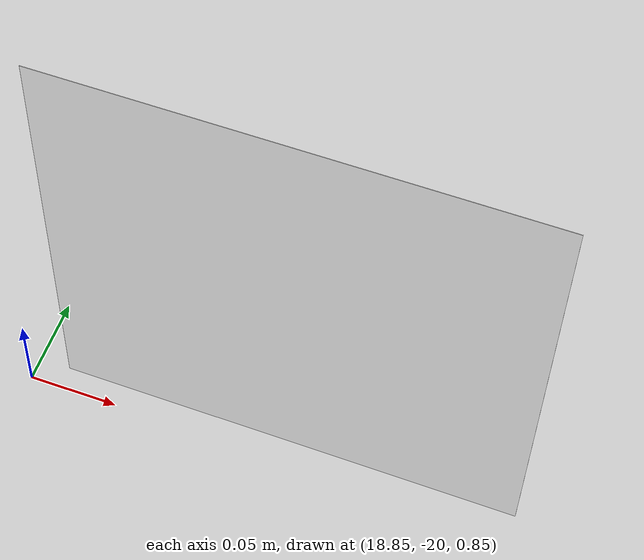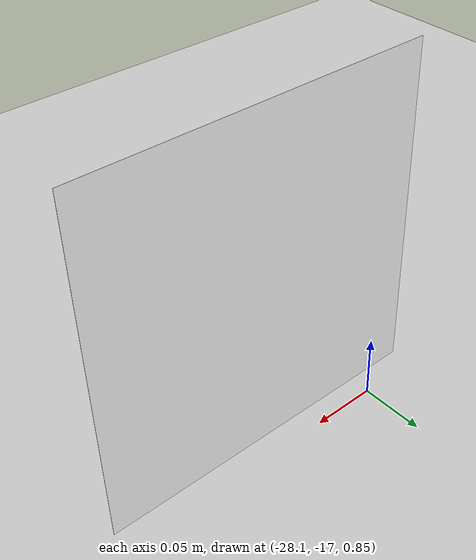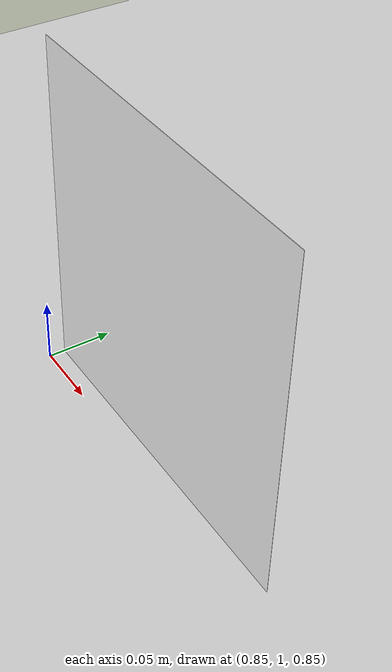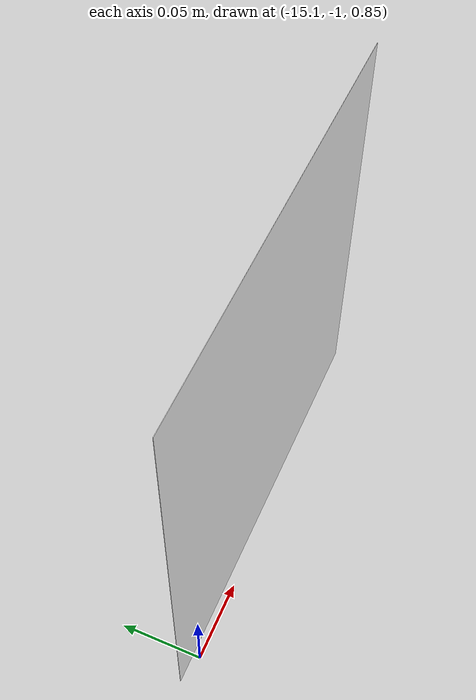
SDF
<?xml version="1.0" ?>
<sdf version="1.9">
  <world name="empty">
    <physics type="ode">
      <max_step_size>0.001</max_step_size>
      <real_time_factor>1.0</real_time_factor>
      <real_time_update_rate>1000</real_time_update_rate>
    </physics>
    <plugin name='gz::sim::systems::Physics' filename='libgz-sim-physics-system.so'/>
    <plugin name='gz::sim::systems::UserCommands' filename='libgz-sim-user-commands-system.so'/>
    <plugin name='gz::sim::systems::SceneBroadcaster' filename='libgz-sim-scene-broadcaster-system.so'/>
    <plugin name='gz::sim::systems::Contact' filename='libgz-sim-contact-system.so'/>
    <plugin name='gz::sim::systems::Imu' filename='libgz-sim-imu-system.so'/>
    <plugin name='gz::sim::systems::AirPressure' filename='libgz-sim-air-pressure-system.so'/>
    <plugin name='gz::sim::systems::Sensors' filename='libgz-sim-sensors-system.so'>
      <render_engine>ogre2</render_engine>
    </plugin>
    <gravity>0 0 -9.80665</gravity>
    <magnetic_field>6e-06 2.3e-05 -4.2e-05</magnetic_field>
    <atmosphere type='adiabatic'/>
    <scene>
      <grid>false</grid>
      <ambient>0.4 0.4 0.4 1</ambient>
      <background>0.7 0.7 0.7 1</background>
      <shadows>true</shadows>
    </scene>
    <model name="ground_plane">
      <static>true</static>
      <link name="link">
        <collision name="collision">
          <geometry>
            <plane>
              <normal>0 0 1</normal>
              <size>100 100</size>
            </plane>
          </geometry>
        </collision>
        <visual name="visual">
          <geometry>
            <plane>
              <normal>0 0 1</normal>
              <size>100 100</size>
            </plane>
          </geometry>
          <material>
            <ambient>0.8 0.8 0.8 1</ambient>
            <diffuse>0.8 0.8 0.8 1</diffuse>
            <specular>0.8 0.8 0.8 1</specular>
          </material>
        </visual>
      </link>
    </model>
    <include>
      <pose>1 1 1 1.57 1.57 0</pose>
      <uri>model://aruco_markers/aruco_marker_1</uri>
    </include>
    <include>
      <pose>-15 -1 1 1.57 0 0</pose>
      <uri>model://aruco_markers/aruco_marker_2</uri>
    </include>
    <include>
      <pose>19 -20 1 1.57 1.57 0</pose>
      <uri>model://aruco_markers/aruco_marker_3</uri>
    </include>
    <include>
      <pose>-28 -17 1 1.57 0 3.14</pose>
      <uri>model://aruco_markers/aruco_marker_4</uri>
    </include>
    <include>
      <pose>-10 16 1.5 1.57 0 1.57</pose>
      <uri>model://aruco_markers/aruco_marker_5</uri>
    </include>
    <light type="directional" name="sun">
      <cast_shadows>true</cast_shadows>
      <pose>0 0 10 0 0 0</pose>
      <diffuse>0.8 0.8 0.8 1</diffuse>
      <specular>0.2 0.2 0.2 1</specular>
      <attenuation>
        <range>1000</range>
        <constant>0.9</constant>
        <linear>0.01</linear>
        <quadratic>0.001</quadratic>
      </attenuation>
      <direction>-0.5 0.1 -0.9</direction>
    </light>
  </world>
</sdf>

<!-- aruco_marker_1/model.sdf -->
<sdf version="1.9">
  <model name="aruco_marker_1">
    <static>true</static>
    <link name="link">
      <!-- ArUco Marker 0 -->
      <visual name="aruco_marker_1_vis">
        <pose>0 0 0 0 0 0</pose> <!-- Position: x, y, z; Rotation: roll, pitch, yaw -->
        <geometry>
          <plane>
            <normal>0 0 1</normal> <!-- Normal vector for the plane -->
            <size>0.25 0.25</size>   <!-- Size of the marker (e.g., 10cm x 10cm) -->
          </plane>
        </geometry>
        <material>
          <pbr>
            <metal>
              <albedo_map>marker_0001.png</albedo_map>
              <metalness>0.0</metalness>
            </metal>
          </pbr>
          <ambient>1 1 1 1</ambient>
          <diffuse>1 1 1 1</diffuse>
          <specular>0 0 0 1</specular>
        </material>
      </visual>
    </link>
  </model>
</sdf>

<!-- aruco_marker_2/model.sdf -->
<sdf version="1.9">
  <model name="aruco_marker_2">
    <static>true</static>
    <link name="link">
      <!-- ArUco Marker 0 -->
      <visual name="aruco_marker_2_vis">
        <pose>0 0 0 0 0 0</pose> <!-- Position: x, y, z; Rotation: roll, pitch, yaw -->
        <geometry>
          <plane>
            <normal>0 0 1</normal> <!-- Normal vector for the plane -->
            <size>0.25 0.25</size>   <!-- Size of the marker (e.g., 10cm x 10cm) -->
          </plane>
        </geometry>
        <material>
          <pbr>
            <metal>
              <albedo_map>marker_0002.png</albedo_map>
              <metalness>0.0</metalness>
            </metal>
          </pbr>
          <ambient>1 1 1 1</ambient>
          <diffuse>1 1 1 1</diffuse>
          <specular>0 0 0 1</specular>
        </material>
      </visual>
    </link>
  </model>
</sdf>

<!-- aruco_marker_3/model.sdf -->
<sdf version="1.9">
  <model name="aruco_marker_3">
    <static>true</static>
    <link name="link">
      <!-- ArUco Marker 0 -->
      <visual name="aruco_marker_3_vis">
        <pose>0 0 0 0 0 0</pose> <!-- Position: x, y, z; Rotation: roll, pitch, yaw -->
        <geometry>
          <plane>
            <normal>0 0 1</normal> <!-- Normal vector for the plane -->
            <size>0.25 0.25</size>   <!-- Size of the marker (e.g., 10cm x 10cm) -->
          </plane>
        </geometry>
        <material>
          <pbr>
            <metal>
              <albedo_map>marker_0003.png</albedo_map>
              <metalness>0.0</metalness>
            </metal>
          </pbr>
          <ambient>1 1 1 1</ambient>
          <diffuse>1 1 1 1</diffuse>
          <specular>0 0 0 1</specular>
        </material>
      </visual>
    </link>
  </model>
</sdf>

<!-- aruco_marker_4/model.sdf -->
<sdf version="1.9">
  <model name="aruco_marker_4">
    <static>true</static>
    <link name="link">
      <!-- ArUco Marker 0 -->
      <visual name="aruco_marker_4_vis">
        <pose>0 0 0 0 0 0</pose> <!-- Position: x, y, z; Rotation: roll, pitch, yaw -->
        <geometry>
          <plane>
            <normal>0 0 1</normal> <!-- Normal vector for the plane -->
            <size>0.25 0.25</size>   <!-- Size of the marker (e.g., 10cm x 10cm) -->
          </plane>
        </geometry>
        <material>
          <pbr>
            <metal>
              <albedo_map>marker_0004.png</albedo_map>
              <metalness>0.0</metalness>
            </metal>
          </pbr>
          <ambient>1 1 1 1</ambient>
          <diffuse>1 1 1 1</diffuse>
          <specular>0 0 0 1</specular>
        </material>
      </visual>
    </link>
  </model>
</sdf>

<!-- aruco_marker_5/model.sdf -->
<sdf version="1.9">
  <model name="aruco_marker_5">
    <static>true</static>
    <link name="link">
      <!-- ArUco Marker 0 -->
      <visual name="aruco_marker_5_vis">
        <pose>0 0 0 0 0 0</pose> <!-- Position: x, y, z; Rotation: roll, pitch, yaw -->
        <geometry>
          <plane>
            <normal>0 0 1</normal> <!-- Normal vector for the plane -->
            <size>0.25 0.25</size>   <!-- Size of the marker -->
          </plane>
        </geometry>
        <material>
          <pbr>
            <metal>
              <albedo_map>marker_0005.png</albedo_map>
              <metalness>0.0</metalness>
            </metal>
          </pbr>
          <ambient>1 1 1 1</ambient>
          <diffuse>1 1 1 1</diffuse>
          <specular>0 0 0 1</specular>
        </material>
      </visual>
    </link>
  </model>
</sdf>
